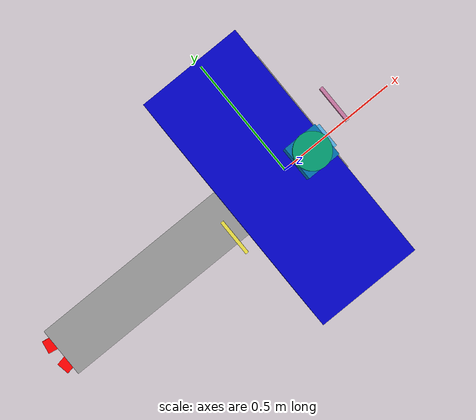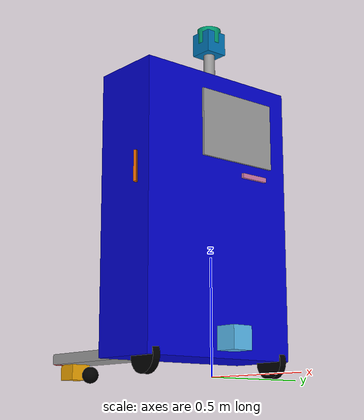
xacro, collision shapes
<?xml version="1.0"?>
<robot name="deliverybot"
    xmlns:xacro="http://wiki.ros.org/xacro">

    <!-- basic shapes -->
    <xacro:include filename="$(find urdf_basic_shapes)/urdf/basic_shapes.urdf.xacro"/>

    <link name="base_footprint"/>

    <!--cubic base_link -->
    <xacro:cube name="base_link" x=".325" y=".78" z="1.226" ori="-.0975 0 .613" rpy="0 0 0" rgb="Blue" m="10" friction="${standard_friction}"/>
    <joint name="base_joint" type="fixed">
        <parent link="base_footprint"/>
        <child link="base_link"/>
        <origin xyz="0 0 0.075" rpy="0 0 0"/>
    </joint>

    <!-- cylinder -->
    <xacro:cylinder_shape name="cylinder" r="0.025" h=".25" ori="0 0 0" rpy="0 0 0" rgb="Grey" m=".1" friction="${standard_friction}"/>
    <joint name="joint_cylinder" type="fixed">
        <parent link="base_link"/>
        <child link="cylinder"/>
        <origin xyz="0 0 1.32" rpy="0 0 0"/>
    </joint>

    <!-- tail -->
    <xacro:cube name="tail" x="1.065" y=".2" z=".05" ori="-0.5325 0 0" rpy="0 0 0" rgb="Grey" m="3" friction="${standard_friction}"/>
    <joint name="tail_joint" type="fixed">
        <parent link="base_link"/>
        <child link="tail"/>
        <origin xyz="0 0 0.05" rpy="0 0 0"/>
    </joint>

    <!-- cubic screen -->
    <xacro:cube name="screen" x=".15" y=".4" z=".3" ori="0 0 0" rpy="0 0 0" rgb="Grey" m=".1" friction="${standard_friction}"/>
    <joint name="screen_joint" type="fixed">
        <parent link="base_link"/>
        <child link="screen"/>
        <origin xyz="0.0 0.1 1" rpy="0 0 0"/>
    </joint>

    <!-- diff drive -->
    <!-- the parent link should be the center of wheel axis -->
    <xacro:include filename="$(find urdf_basic_shapes)/urdf/diff_wheel_control.urdf.xacro"/>
    <xacro:diff_wheel wheeldiam="0.145" h=".035" wheel_separation=".7" parent="base_link" friction="2000" rgb="Black" odom_topic="odom" pub_tf="false"/>

    <!-- caster wheel back -->
    <xacro:ball name="casterwheel_back" r="0.04" ori="0 0 0" rpy="0 0 0" rgb="Black" m="1" friction="${sliding_friction}"/>
    <joint name="joint_casterwheel_back" type="fixed">
        <parent link="base_link"/>
        <child link="casterwheel_back"/>
        <origin xyz="-.885 0 -.03" rpy="0 0 0"/>
    </joint>

    <!-- Hokuyo Laser Back-->
    <xacro:include filename="$(find urdf_basic_shapes)/sensors/hokuyo.urdf.xacro"/>
    <xacro:hokuyo name="scan_back" xyz="-1.017 0 0" rpy="${pi} 0 ${pi}" parent="base_link" min_a="${-pi/2}" max_a="${pi/2}" topic="/lidarBack/scan"/>
    <!-- Hokuyo Laser Front-->
    <xacro:hokuyo name="scan_front" xyz=".14 0.0 .077" rpy="0 0 0" parent="base_link" min_a="${-pi/2}" max_a="${pi/2}" topic="/lidarFront/scan"/>

    <!-- TOP 3D Olei Lidar  -->
    <xacro:include filename="$(find urdf_basic_shapes)/sensors/velodyne.urdf.xacro"/>
    <xacro:velodyne16 name="olei" xyz="0 0 1.392" rpy="0 0 0" parent="base_link"/>
    <!-- add scan topic to velodyne lidar-->
    <xacro:hokuyo name="olei_lidar" xyz="0 0 1.392" rpy="0 0 0" parent="base_link" min_a="${-pi}" max_a="${pi}" topic="scan"/>
    <!-- VERTICAL 3D Olei Lidar  -->

    <!-- imu -->
    <xacro:include filename="$(find urdf_basic_shapes)/sensors/imu.urdf.xacro"/>
    <xacro:imu name="imu" xyz="0 0 0" rpy="0 0 0" parent="base_link"/>

    <!-- depth_cam -->
    <xacro:include filename="$(find urdf_basic_shapes)/sensors/depth_cam.urdf.xacro"/>
    <xacro:depth_cam name="cameraF" xyz=".2 0 ${.815-.075}" rpy="0 0 0" parent="base_link"/>
    <xacro:depth_cam name="cameraB" xyz="-.3 0 ${.6-.075}" rpy="0 0 ${pi}" parent="base_link"/>
    <xacro:depth_cam name="cameraL" xyz="0 0.4 ${.9-.075}" rpy="${pi/2} 0 ${pi - 0.610865}" parent="base_link"/>
    <xacro:depth_cam name="cameraR" xyz="0 -.4 ${.9-.075}" rpy="${-pi/2} 0 ${pi + 0.610865}" parent="base_link"/>

    <!-- Sonar -->
    <xacro:include filename="$(find urdf_basic_shapes)/sensors/sonar.urdf.xacro"/>
    <xacro:sonar name="sonarR" xyz="-1.1 -.05 .05" rpy="0 -.0872665 ${pi + 0.174533}" parent="base_link" min_a="-0.05" max_a="0.05" topic="sonarR"/>
    <xacro:sonar name="sonarL" xyz="-1.1 0.05 .05" rpy="0 -.0872665 ${pi - 0.174533}" parent="base_link" min_a="-0.05" max_a="0.05" topic="sonarL"/>

</robot>

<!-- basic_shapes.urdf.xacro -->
<robot name="basic_shapes" xmlns:xacro="http://wiki.ros.org/xacro">
  <!-- basic inertia -->
  <xacro:include filename="$(find urdf_basic_shapes)/urdf/inertia.urdf.xacro"/>
  <!-- basic material -->
  <xacro:include filename="$(find urdf_basic_shapes)/urdf/material.urdf.xacro"/>
  <!-- basic shapes gazebo-->
  <xacro:include filename="$(find urdf_basic_shapes)/urdf/basic_shapes.gazebo.xacro"/>

  <!-- constants -->
  <xacro:property name="update_rate" value="50" />

  <xacro:macro name="cube" params="name x y z ori rpy rgb m friction">
    <link name="${name}">
        <visual>
          <origin xyz="${ori}" rpy="${rpy}"/>
          <geometry>
              <box size="${x} ${y} ${z}"/>
          </geometry>
          <material name="${rgb}"/>
        </visual>
        <collision>
        <origin xyz="${ori}" rpy="${rpy}" />
        <geometry>
            <box size="${x} ${y} ${z}" />
        </geometry>
        </collision>
        <xacro:solid_cuboid_inertia m="${m}" h="${y}" d="${z}" w="${x}"/>
    </link>
    <xacro:gazebo_params name="${name}" rgb="${rgb}" friction="${friction}"/>
  </xacro:macro>

  <xacro:macro name="ball" params="name r ori rpy rgb m friction">
    <link name="${name}">
        <visual>
          <origin xyz="${ori}" rpy="${rpy}"/>
          <geometry>
              <sphere radius="${r}"/>
          </geometry>
          <material name="${rgb}"/>
        </visual>
        <collision>
        <origin xyz="${ori}" rpy="${rpy}" />
        <geometry>
            <sphere radius="${r}" />
        </geometry>
        </collision>
        <xacro:solid_sphere_inertia m="${m}" r="${r}"/>
    </link>
    <xacro:gazebo_params name="${name}" rgb="${rgb}" friction="${friction}"/>
  </xacro:macro>

  <xacro:macro name="cylinder_shape" params="name r h ori rpy rgb m friction">
    <link name="${name}">
        <visual>
          <origin xyz="${ori}" rpy="${rpy}"/>
          <geometry>
              <cylinder radius="${r}" length="${h}"/>
          </geometry>
          <material name="${rgb}"/>
        </visual>
        <collision>
        <origin xyz="${ori}" rpy="${rpy}" />
        <geometry>
            <cylinder radius="${r}" length="${h}" />
        </geometry>
        </collision>
        <xacro:solid_cylinder_inertia m="${m}" r="${r}" h="${h}"/>
    </link>
    <xacro:gazebo_params name="${name}" rgb="${rgb}" friction="${friction}"/>
  </xacro:macro>

  <xacro:macro name="wheel" params="name r h ori rpy rgb m friction">
    <link name="${name}">
        <visual>
          <origin xyz="${ori}" rpy="${rpy}"/>
          <geometry>
              <cylinder radius="${r}" length="${h}"/>
          </geometry>
          <material name="${rgb}"/>
        </visual>
        <collision>
        <origin xyz="${ori}" rpy="${rpy}" />
        <geometry>
            <sphere radius="${r}" />   <!--use shpere here to reduce the point of contract to a infinit small point-->
        </geometry>
        </collision>
        <xacro:solid_cylinder_inertia m="${m}" r="${r}" h="${h}"/>
    </link>
    <xacro:gazebo_params name="${name}" rgb="${rgb}" friction="${friction}"/>
  </xacro:macro>

</robot>

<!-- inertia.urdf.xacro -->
<robot xmlns:xacro="http://wiki.ros.org/xacro">
  <!-- source en.wikipedia.org/wiki/List_of_moments_of_inertia-->

  <!-- TODO Solid sphere of radius r and mass m-->
  <xacro:macro name="solid_sphere_inertia" params="m r">
  <inertial>
      <mass value="${m}" />
    <inertia  ixx="${(2*r*r*m)/5}" ixy = "0" ixz = "0"
              iyy="${(2*r*r*m)/5}" iyz = "0"
              izz="${(2*r*r*m)/5}"
     />
     </inertial>
  </xacro:macro>

  <!-- TODO Hollow sphere of radius r and mass m-->
  <xacro:macro name="hollow_sphere_inertia" params="m r">
  <inertial>
      <mass value="${m}" />
    <inertia  ixx="${(2*r*r*m)/3}" ixy = "0" ixz = "0"
              iyy="${(2*r*r*m)/3}" iyz = "0"
              izz="${(2*r*r*m)/3}"
     />
     </inertial>
  </xacro:macro>

  <!-- TODO Solid ellipsoid of semi-axes a, b, c and mass m-->
  <xacro:macro name="ellipsoid_semi_axes_inertia" params="a b c m r">
  <inertial>
      <mass value="${m}" />
    <inertia  ixx="${(m*(b*b+c*c))/5}" ixy = "0" ixz = "0"
              iyy="${(m*(a*a+c*c))/5}" iyz = "0"
              izz="${(m*(a*a+b*b))/5}"
     />
     </inertial>
  </xacro:macro>

  <!-- TODO Right circular cone with radius r, height h and mass m, about the apex -->
  <xacro:macro name="right_circular_cone_inertia" params="m r h">
  <inertial>
      <mass value="${m}" />
    <inertia  ixx="${((3*m*(h*h))/5)+((3*m*(r*r))/20)}" ixy = "0" ixz = "0"
              iyy="${((3*m*(h*h))/5)+((3*m*(r*r))/20)}" iyz = "0"
              izz="${(3*m*(r*r))/10}"
     />
     </inertial>
  </xacro:macro>

  <!-- TODO Solid cuboid of width w, height h, depth d, and mass m -->
  <!-- yes, axis in solid_cuboid_inertia are changed, w relates to X axis, d to Z axis, and h to Y axis -->
  <!-- Keep this comment -->
  <xacro:macro name="solid_cuboid_inertia" params="m h d w">
    <inertial>
      <mass value="${m}" />
        <inertia  ixx="${(m*(h*h+d*d))/12}" ixy = "0" ixz = "0"
                iyy="${(m*(w*w+d*d))/12}" iyz = "0"
                izz="${(m*(w*w+h*h))/12}"
        />
    </inertial>
  </xacro:macro>

  <!-- TODO Solid cylinder of radius r, height h and mass m -->
  <xacro:macro name="solid_cylinder_inertia" params="m r h">
  <inertial>
      <mass value="${m}" />
    <inertia  ixx="${m*(3*r*r+h*h)/12}" ixy = "0" ixz = "0"
              iyy="${m*(3*r*r+h*h)/12}" iyz = "0"
              izz="${m*r*r/2}"
     />
     </inertial>
  </xacro:macro>

    <!-- TODO Thick-walled cylindrical tube with open ends, of inner radius r1, outer radius r2, length h and mass m -->
    <xacro:macro name="thick_walled_cylinder_inertia" params="m r1 r2 h">
    <inertial>
      <mass value="${m}" />
    <inertia  ixx="${m*((3*(r1*r1+r2*r2))+(h*h))/12}" ixy = "0" ixz = "0"
              iyy="${m*((3*(r1*r1+r2*r2))+(h*h))/12}" iyz = "0"
              izz="${m*(r1*r1+r2*r2)/2}"
     />
     </inertial>
  </xacro:macro>

</robot>

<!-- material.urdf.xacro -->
<robot xmlns:xacro="http://wiki.ros.org/xacro">

  <material name="Red">
    <color rgba="1 0 0 1"/>
  </material>
  <material name="Green">
    <color rgba="0 1 0 1"/>
  </material>
  <material name="Blue">
    <color rgba="0 0 0.8 1"/>
  </material>
  <material name="Black">
    <color rgba="0 0 0 1"/>
  </material>
  <material name="White">
    <color rgba="1 1 1 1"/>
  </material>
  <material name="Gray">
    <color rgba="0.8 0.8 0.8 1"/>
  </material>
  <material name="Yellow">
    <color rgba="1 1 0 1"/>
  </material>
  <material name="Orange">
    <color rgba="1 0.5 0 1"/>
  </material>
  <material name="Brown">
    <color rgba="0.6 0.4 0.2 1"/>
  </material>
  <material name="Purple">
    <color rgba="0.5 0 0.5 1"/>
  </material>
  <material name="Cyan">
    <color rgba="0 1 1 1"/>
  </material>

</robot>

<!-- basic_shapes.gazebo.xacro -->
<robot name="basic_shapes"
  xmlns:xacro="http://www.ros.org/wiki/xacro">
  <xacro:arg name="laser_visual" default="true"/>

  <xacro:property name="update_rate" value="10" />

  <xacro:property name="standard_friction" value="0.2" />
  <xacro:property name="wheel_friction" value="10000.0" />
  <xacro:property name="sliding_friction" value="0.1" />

  <xacro:macro name="gazebo_params" params="name rgb friction">
    <gazebo reference="${name}">
      <material>Gazebo/${rgb}</material>
      <mu1>${friction}</mu1>
      <mu2>${friction}</mu2>
      <kp value="10000000.0" />
      <kd value="1.0" />
      <minDepth>0.001</minDepth>
      <maxVel>0.1</maxVel>
      <fdir1>1 0 0</fdir1>
    </gazebo>
  </xacro:macro>

  <!-- Gazebo plugin for ROS Control -->

</robot>

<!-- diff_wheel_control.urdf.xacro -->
<robot name="diff_wheel"
    xmlns:xacro="http://wiki.ros.org/xacro">

    <!-- differential drive macro -->
    <xacro:macro name="diff_wheel" params=" wheeldiam h wheel_separation parent friction rgb odom_topic:=odom pub_tf:=true">
        <xacro:cylinder_shape name="left_wheel" r="${wheeldiam/2}" h="${h}" ori="0 0 0" rpy="0 0 0" rgb="${rgb}" m="0.1" friction="${friction}"/>
        <joint name="left_wheel_joint" type="continuous">
            <axis xyz="0 0 -1" rpy="0 0 0" />
            <parent link="${parent}"/>
            <child link="left_wheel"/>
            <origin xyz="0 ${wheel_separation/2} 0" rpy="${-pi/2} 0 ${pi}"/>
        </joint>
        <transmission name="left_wheel_trans">
            <type>transmission_interface/SimpleTransmission</type>
            <joint name="left_wheel_joint">
                <hardwareInterface>hardware_interface/VelocityJointInterface</hardwareInterface>
            </joint>
            <actuator name="left_wheel_actuator">
                <mechanicalReduction>1.0</mechanicalReduction>
                <hardwareInterface>VelocityJointInterface</hardwareInterface>
            </actuator>
        </transmission>

        <xacro:cylinder_shape name="right_wheel" r="${wheeldiam/2}" h="${h}" ori="0 0 0" rpy="0 0 0" rgb="${rgb}" m="0.1" friction="${friction}"/>
        <joint name="right_wheel_joint" type="continuous">
            <axis xyz="0 0 1" rpy="0 0 0" />
            <parent link="${parent}"/>
            <child link="right_wheel"/>
            <origin xyz="0 ${-wheel_separation/2} 0" rpy="${-pi/2} 0 0"/>
        </joint>
        <transmission name="right_wheel_trans">
            <type>transmission_interface/SimpleTransmission</type>
            <joint name="right_wheel_joint">
                <hardwareInterface>hardware_interface/VelocityJointInterface</hardwareInterface>
            </joint>
            <actuator name="right_wheel_actuator">
                <mechanicalReduction>1.0</mechanicalReduction>
                <hardwareInterface>VelocityJointInterface</hardwareInterface>
            </actuator>
        </transmission>

    </xacro:macro>

</robot>

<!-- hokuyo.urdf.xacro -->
<robot name="hokuyo"
    xmlns:xacro="http://wiki.ros.org/xacro">
    <xacro:macro name="hokuyo" params="name parent xyz rpy min_a max_a topic=scan">
        <link name="${name}">
            <collision>
                <origin xyz="0 0 0" rpy="0 0 0"/>
                <geometry>
                    <box size="0.1 0.1 0.1"/>
                </geometry>
            </collision>

            <visual>
                <origin xyz="0 0 0" rpy="0 0 0"/>
                <geometry>
                    <mesh filename="package://urdf_basic_shapes/meshes/hokuyo.dae"/>
                </geometry>
            </visual>

            <inertial>
                <mass value="1e-5" />
                <origin xyz="0 0 0" rpy="0 0 0"/>
                <inertia ixx="1e-6" ixy="0" ixz="0" iyy="1e-6" iyz="0" izz="1e-6" />
            </inertial>
        </link>

        <joint name="${name}_joint" type="fixed">
            <axis xyz="0 1 0" />
            <origin xyz="${xyz}" rpy="${rpy}"/>
            <parent link="${parent}"/>
            <child link="${name}"/>
        </joint>

        <!-- hokuyo -->
        <gazebo reference="${name}">
            <sensor type="ray" name="${name}_hokuyo_sensor">
                <pose>0 0 0 0 0 0</pose>
                <visualize>true</visualize>
                <update_rate>10</update_rate>
                <ray>
                    <scan>
                        <horizontal>
                            <samples>720</samples>
                            <resolution>1</resolution>
                            <min_angle>${min_a}</min_angle>
                            <max_angle>${max_a}</max_angle>
                        </horizontal>
                    </scan>
                    <range>
                        <min>0.10</min>
                        <max>30.0</max>
                        <resolution>0.01</resolution>
                    </range>
                    <noise>
                        <type>gaussian</type>
                        <mean>0.0</mean>
                        <stddev>0.01</stddev>
                    </noise>
                </ray>
                <plugin name="gazebo_ros_${name}_controller" filename="libgazebo_ros_laser.so">
                    <topicName>${topic}</topicName>
                    <frameName>${name}</frameName>
                </plugin>
            </sensor>
        </gazebo>

    </xacro:macro>
</robot>

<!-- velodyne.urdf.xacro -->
<robot name="velodyne" xmlns:xacro="http://wiki.ros.org/xacro">

    <xacro:macro name="velodyne16" params="name parent xyz rpy">
        <xacro:arg name="gpu" default="false"/>
        <xacro:property name="gpu" value="$(arg gpu)" />
        <xacro:arg name="organize_cloud" default="false"/>
        <xacro:property name="organize_cloud" value="$(arg organize_cloud)" />

        <xacro:include filename="$(find velodyne_description)/urdf/VLP-16.urdf.xacro"/>
        <xacro:VLP-16 parent="${parent}" name="${name}" topic="${name}_points" organize_cloud="${organize_cloud}" hz="10" samples="440" gpu="${gpu}">
            <origin xyz="${xyz}" rpy="${rpy}" />
        </xacro:VLP-16>
    </xacro:macro>

</robot>

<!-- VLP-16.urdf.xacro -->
<robot xmlns:xacro="http://www.ros.org/wiki/xacro" name="VLP-16">
  <xacro:property name="M_PI" value="3.1415926535897931"/>
  <xacro:macro name="VLP-16" params="*origin parent:=base_link name:=velodyne topic:=/velodyne_points hz:=10 lasers:=16 samples:=1875 collision_range:=0.3 min_range:=0.9 max_range:=130.0 noise:=0.008 min_angle:=-${M_PI} max_angle:=${M_PI} gpu:=false">

    <joint name="${name}_base_mount_joint" type="fixed">
      <xacro:insert_block name="origin"/>
      <parent link="${parent}"/>
      <child link="${name}_base_link"/>
    </joint>

    <link name="${name}_base_link">
      <inertial>
        <mass value="0.83"/>
        <origin xyz="0 0 0.03585"/>
        <inertia ixx="${(0.83 * (3.0*0.0516*0.0516 + 0.0717*0.0717)) / 12.0}" ixy="0" ixz="0" iyy="${(0.83 * (3.0*0.0516*0.0516 + 0.0717*0.0717)) / 12.0}" iyz="0" izz="${0.5 * 0.83 * (0.0516*0.0516)}"/>
      </inertial>
      <visual>
        <geometry>
          <mesh filename="file://$(find velodyne_description)/meshes/VLP16_base_1.dae" />
        </geometry>
      </visual>
      <visual>
        <geometry>
          <mesh filename="file://$(find velodyne_description)/meshes/VLP16_base_2.dae" />
        </geometry>
      </visual>
      <collision>
        <origin rpy="0 0 0" xyz="0 0 0.03585"/>
        <geometry>
          <cylinder radius="0.0516" length="0.0717"/>
        </geometry>
      </collision>
    </link>

    <joint name="${name}_base_scan_joint" type="fixed">
      <origin xyz="0 0 0.0377" rpy="0 0 0"/>
      <parent link="${name}_base_link"/>
      <child link="${name}"/>
    </joint>

    <link name="${name}">
      <inertial>
        <mass value="0.01"/>
        <origin xyz="0 0 0"/>
        <inertia ixx="1e-7" ixy="0" ixz="0" iyy="1e-7" iyz="0" izz="1e-7"/>
      </inertial>
      <visual>
        <origin xyz="0 0 -0.0377"/>
        <geometry>
          <mesh filename="$(find velodyne_description)/meshes/VLP16_scan.dae" />
        </geometry>
      </visual>
    </link>

    <!-- Gazebo requires the velodyne_gazebo_plugins package -->
    <gazebo reference="${name}">
      <xacro:if value="${gpu}">
        <sensor type="gpu_ray" name="${name}-VLP16">
          <pose>0 0 0 0 0 0</pose>
          <visualize>false</visualize>
          <update_rate>${hz}</update_rate>
          <ray>
            <scan>
              <horizontal>
                <samples>${samples}</samples>
                <resolution>1</resolution>
                <min_angle>${min_angle}</min_angle>
                <max_angle>${max_angle}</max_angle>
              </horizontal>
              <vertical>
                <samples>${lasers}</samples>
                <resolution>1</resolution>
                <min_angle>-${15.0*M_PI/180.0}</min_angle>
                <max_angle>
                  ${15.0*M_PI/180.0}</max_angle>
              </vertical>
            </scan>
            <range>
              <min>${collision_range}</min>
              <max>${max_range+1}</max>
              <resolution>0.001</resolution>
            </range>
            <noise>
              <type>gaussian</type>
              <mean>0.0</mean>
              <stddev>0.0</stddev>
            </noise>
          </ray>
          <plugin name="gazebo_ros_laser_controller" filename="libgazebo_ros_velodyne_laser.so">
            <ros>
                <remapping>~/out:=${topic}</remapping>
            </ros>
            <frame_name>${name}</frame_name>
            <min_range>${min_range}</min_range>
            <max_range>${max_range}</max_range>
            <gaussianNoise>${noise}</gaussianNoise>
          </plugin>
        </sensor>
      </xacro:if>
      <xacro:unless value="${gpu}">
        <sensor type="ray" name="${name}-VLP16">
          <pose>0 0 0 0 0 0</pose>
          <visualize>false</visualize>
          <update_rate>${hz}</update_rate>
          <ray>
            <scan>
              <horizontal>
                <samples>${samples}</samples>
                <resolution>1</resolution>
                <min_angle>${min_angle}</min_angle>
                <max_angle>${max_angle}</max_angle>
              </horizontal>
              <vertical>
                <samples>${lasers}</samples>
                <resolution>1</resolution>
                <min_angle>-${15.0*M_PI/180.0}</min_angle>
                <max_angle>
                  ${15.0*M_PI/180.0}</max_angle>
              </vertical>
            </scan>
            <range>
              <min>${collision_range}</min>
              <max>${max_range+1}</max>
              <resolution>0.001</resolution>
            </range>
            <noise>
              <type>gaussian</type>
              <mean>0.0</mean>
              <stddev>0.05</stddev>
            </noise>
          </ray>
          <plugin name="gazebo_ros_laser_controller" filename="libgazebo_ros_velodyne_laser.so">
            <ros>
                <remapping>~/out:=${topic}</remapping>
            </ros>
            <frame_name>${name}</frame_name>
            <min_range>${min_range}</min_range>
            <max_range>${max_range}</max_range>
            <gaussianNoise>${noise}</gaussianNoise>
          </plugin>
        </sensor>
      </xacro:unless>
    </gazebo>

  </xacro:macro>
</robot>

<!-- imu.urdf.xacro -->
<robot name="imu" xmlns:xacro="http://wiki.ros.org/xacro">
    <xacro:macro name="imu" params="name parent xyz rpy">

        <link name="${name}" />

        <joint name="${name}_joint" type="fixed">
            <axis xyz="0 0 0" />
            <origin xyz="${xyz}" rpy="${rpy}" />
            <parent link="${parent}" />
            <child link="${name}" />
        </joint>

        <!-- imu -->
        <gazebo reference="${name}">
            <gravity>true</gravity>
            <sensor name="${name}" type="imu">
                <always_on>true</always_on>
                <update_rate>200</update_rate>
                <visualize>true</visualize>
                <topic>${name}</topic>
                <plugin filename="libgazebo_ros_imu_sensor.so" name="imu_plugin">
                    <topicName>${name}</topicName>
                    <remapping>~/out:=${name}</remapping>
                    <bodyName>${name}</bodyName>
                    <updateRateHZ>10.0</updateRateHZ>
                    <gaussianNoise>0.0</gaussianNoise>
                    <xyzOffset>0 0 0</xyzOffset>
                    <rpyOffset>0 0 0</rpyOffset>
                    <frame_name>${name}</frame_name>
                    <initialOrientationAsReference>false</initialOrientationAsReference>
                </plugin>
                <pose>0 0 0 0 0 0</pose>
            </sensor>
        </gazebo>

    </xacro:macro>
</robot>

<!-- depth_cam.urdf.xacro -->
<robot name="depth_cam"
  xmlns:xacro="http://wiki.ros.org/xacro">
  <xacro:macro name="depth_cam" params="name parent xyz rpy">

    <xacro:property name="r200_cam_color_px" value="0.005"/>
    <xacro:property name="r200_cam_color_py" value="0.018"/>
    <xacro:property name="r200_cam_color_pz" value="0.013"/>
    <xacro:property name="r200_cam_depth_offset" value="0.01"/>
    <xacro:arg name="camera_visual" default="false"/>

    <joint name="base_${name}_joint" type="fixed">
      <origin xyz="${xyz}" rpy="${rpy}" />
      <parent link="${parent}"/>
      <child link="${name}_link" />
    </joint>
    <link name="${name}_link">
      <visual>
        <origin xyz="0 0 0" rpy="1.57 0 1.57"/>
        <geometry>
          <mesh filename="package://urdf_basic_shapes/meshes/intel_d435.dae" />
        </geometry>
      </visual>
      <collision>
        <origin xyz="0.003 0.065 0.007" rpy="0 0 0"/>
        <geometry>
          <box size="0.012 0.132 0.020"/>
        </geometry>
      </collision>
    </link>

    <joint name="${name}_color_joint" type="fixed">
      <origin xyz="${r200_cam_color_px} ${r200_cam_color_py} ${r200_cam_color_pz}" rpy="0 0 0"/>
      <parent link="${name}_link"/>
      <child link="${name}_color_frame"/>
    </joint>
    <link name="${name}_color_frame"/>

    <joint name="${name}_color_optical_joint" type="fixed">
      <origin xyz="0 0 0" rpy="-1.57 0 -1.57"/>
      <parent link="${name}_color_frame"/>
      <child link="${name}_color_optical_frame"/>
    </joint>
    <link name="${name}_color_optical_frame"/>

    <joint name="${name}_depth_joint" type="fixed">
      <origin xyz="${r200_cam_color_px} ${r200_cam_color_py + r200_cam_depth_offset} ${r200_cam_color_pz}" rpy="0 0 0"/>

      <parent link="${name}_link"/>
      <child link="${name}_depth_frame"/>
    </joint>
    <link name="${name}_depth_frame"/>

    <joint name="${name}_depth_optical_joint" type="fixed">
      <origin xyz="0 0 0" rpy="-1.57 0 -1.57"/>
      <parent link="${name}_depth_frame"/>
      <child link="${name}_depth_optical_frame"/>
    </joint>
    <link name="${name}_depth_optical_frame"/>

    <gazebo reference="${name}_color_frame">
      <sensor type="depth" name="realsense_R200">

        <always_on>true</always_on>
        <visualize>$(arg camera_visual)</visualize>
        <camera>
          <horizontal_fov>1.3439</horizontal_fov>
          <image>
            <width>1920</width>
            <height>1080</height>
            <format>R8G8B8</format>
          </image>
          <depth_camera></depth_camera>
          <clip>
            <near>0.03</near>
            <far>100</far>
          </clip>
        </camera>
        <plugin name="${name}_controller" filename="libgazebo_ros_openni_kinect.so">
          <baseline>0.2</baseline>
          <alwaysOn>true</alwaysOn>
          <updateRate>30.0</updateRate>
          <cameraName>${name}</cameraName>
          <frameName>${name}_depth_optical_frame</frameName>
          <imageTopicName>color/image_raw</imageTopicName>
          <depthImageTopicName>depth/image_raw</depthImageTopicName>
          <pointCloudTopicName>depth/color/points</pointCloudTopicName>
          <cameraInfoTopicName>color/camera_info</cameraInfoTopicName>
          <depthImageCameraInfoTopicName>depth/camera_info</depthImageCameraInfoTopicName>
          <pointCloudCutoff>0.4</pointCloudCutoff>
          <hackBaseline>0.07</hackBaseline>
          <distortionK1>0.0</distortionK1>
          <distortionK2>0.0</distortionK2>
          <distortionK3>0.0</distortionK3>
          <distortionT1>0.0</distortionT1>
          <distortionT2>0.0</distortionT2>

          <CxPrime>0.0</CxPrime>
          <Cx>0.0</Cx>
          <Cy>0.0</Cy>
          <focalLength>0</focalLength>
          <hackBaseline>0</hackBaseline>
        </plugin>
      </sensor>
    </gazebo>

  </xacro:macro>
</robot>

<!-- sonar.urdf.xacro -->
<robot name="hokuyo"
    xmlns:xacro="http://wiki.ros.org/xacro">
    <xacro:macro name="sonar" params="name parent xyz rpy min_a=-0.14835 max_a=0.14835 topic=sonar">
        <xacro:cube name="${name}" x="0.05" y="0.05" z="0.05" ori="-.025 0 0" rpy="0 0 0" rgb="Red" m="0.02" friction="${standard_friction}"/>

        <joint name="${name}_joint" type="fixed">
            <origin xyz="${xyz}" rpy="${rpy}"/>
            <parent link="${parent}"/>
            <child link="${name}"/>
        </joint>

        <!-- sonar -->
        <gazebo reference="${name}">
            <sensor type="ray" name="TeraRanger">
                <pose>0 0 0 0 0 0</pose>
                <visualize>false</visualize>
                <update_rate>50</update_rate>
                <ray>
                    <scan>
                        <horizontal>
                            <samples>10</samples>
                            <resolution>1</resolution>
                            <min_angle>${min_a}</min_angle>
                            <max_angle>${max_a}</max_angle>
                        </horizontal>
                        <vertical>
                            <samples>10</samples>
                            <resolution>1</resolution>
                            <min_angle>${min_a}</min_angle>
                            <max_angle>${max_a}</max_angle>
                        </vertical>
                    </scan>
                    <range>
                        <min>0.01</min>
                        <max>2</max>
                        <resolution>0.02</resolution>
                    </range>
                </ray>
                <plugin filename="libgazebo_ros_range.so" name="gazebo_ros_range">
                    <gaussianNoise>0.01</gaussianNoise>
                    <alwaysOn>true</alwaysOn>
                    <updateRate>50</updateRate>
                    <topicName>${topic}</topicName>
                    <frameName>${name}</frameName>
                    <radiation>INFRARED</radiation>
                    <fov>0.2967</fov>
                </plugin>
            </sensor>
        </gazebo>

    </xacro:macro>
</robot>
